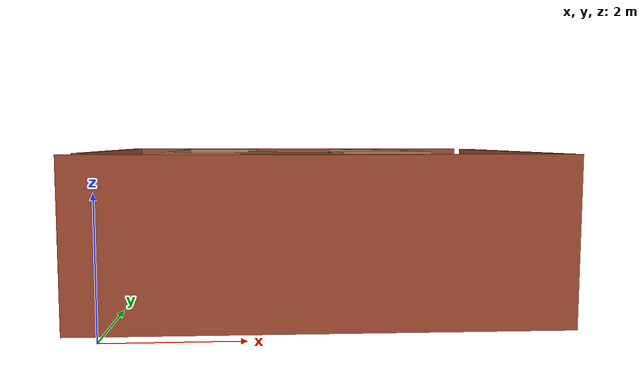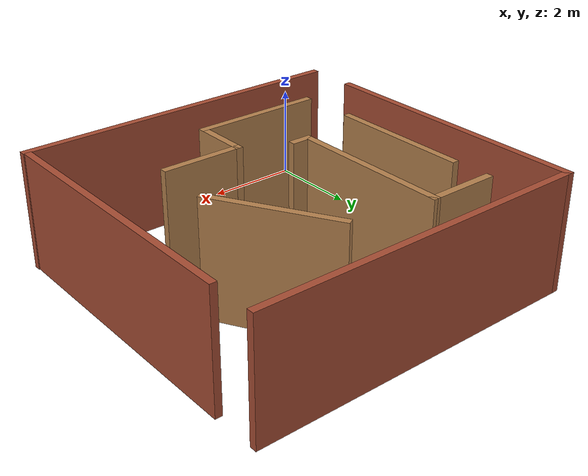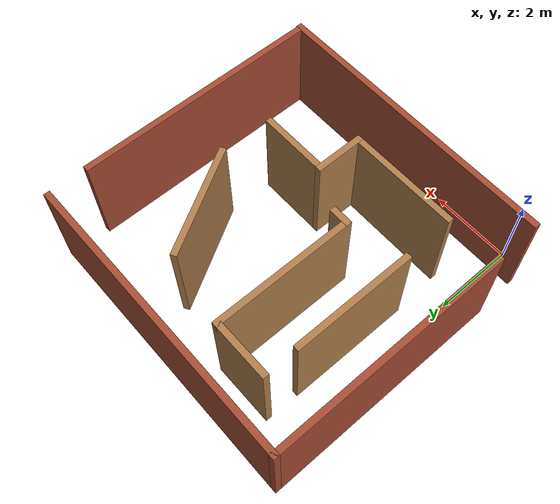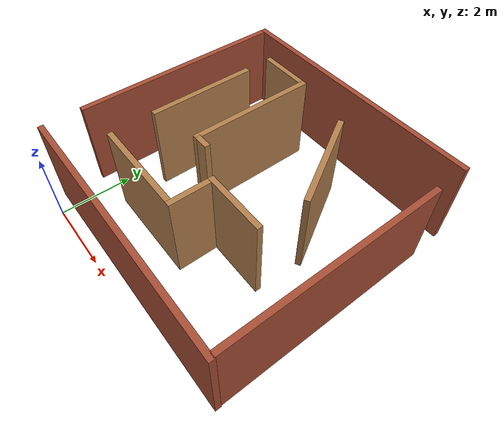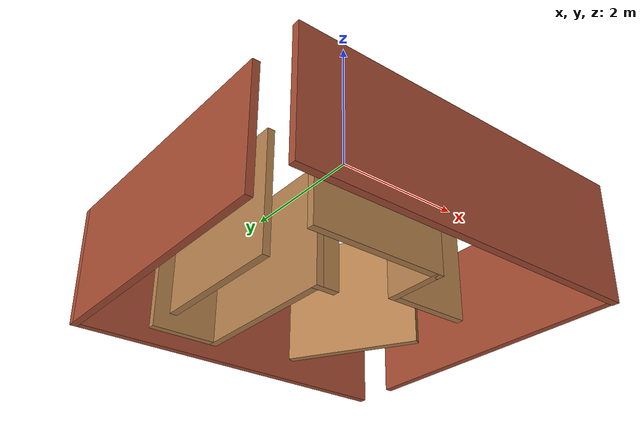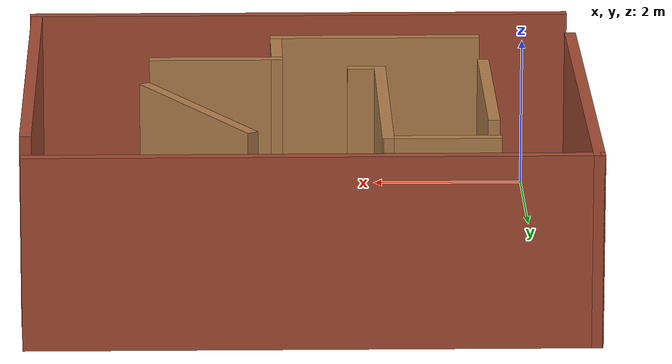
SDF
<?xml version='1.0'?>
<sdf version='1.7'>
  <model name='small_maze'>
    <pose>3.0209 3.73483 0 0 -0 0</pose>
    <link name='Wall_15'>
      <collision name='Wall_15_Collision'>
        <geometry>
          <box>
            <size>7.25 0.15 2.5</size>
          </box>
        </geometry>
        <pose>0 0 1.25 0 -0 0</pose>
      </collision>
      <visual name='Wall_15_Visual'>
        <pose>0 0 1.25 0 -0 0</pose>
        <geometry>
          <box>
            <size>7.25 0.15 2.5</size>
          </box>
        </geometry>
        <material>
          <script>
            <uri>file://media/materials/scripts/gazebo.material</uri>
            <name>Gazebo/Bricks</name>
          </script>
          <ambient>1 1 1 1</ambient>
        </material>
        <meta>
          <layer>0</layer>
        </meta>
      </visual>
      <pose>-0.0291 3.65983 0 0 -0 0</pose>
    </link>
    <link name='Wall_18'>
      <collision name='Wall_18_Collision'>
        <geometry>
          <box>
            <size>6 0.15 2.5</size>
          </box>
        </geometry>
        <pose>0 0 1.25 0 -0 0</pose>
      </collision>
      <visual name='Wall_18_Visual'>
        <pose>0 0 1.25 0 -0 0</pose>
        <geometry>
          <box>
            <size>6 0.15 2.5</size>
          </box>
        </geometry>
        <material>
          <script>
            <uri>file://media/materials/scripts/gazebo.material</uri>
            <name>Gazebo/Bricks</name>
          </script>
          <ambient>1 1 1 1</ambient>
        </material>
        <meta>
          <layer>0</layer>
        </meta>
      </visual>
      <pose>3.56005 -0.274798 0 0 -0 -1.5708</pose>
    </link>
    <link name='Wall_33'>
      <collision name='Wall_33_Collision'>
        <geometry>
          <box>
            <size>2.78498 0.15 2.5</size>
          </box>
        </geometry>
        <pose>0 0 1.25 0 -0 0</pose>
      </collision>
      <visual name='Wall_33_Visual'>
        <pose>0 0 1.25 0 -0 0</pose>
        <geometry>
          <box>
            <size>2.78498 0.15 2.5</size>
          </box>
        </geometry>
        <material>
          <script>
            <uri>file://media/materials/scripts/gazebo.material</uri>
            <name>Gazebo/Wood</name>
          </script>
          <ambient>1 1 1 1</ambient>
        </material>
        <meta>
          <layer>0</layer>
        </meta>
      </visual>
      <pose>-0.964139 -2.1071 0 0 -0 0</pose>
    </link>
    <link name='Wall_37'>
      <collision name='Wall_37_Collision'>
        <geometry>
          <box>
            <size>1.25 0.15 2.5</size>
          </box>
        </geometry>
        <pose>0 0 1.25 0 -0 0</pose>
      </collision>
      <visual name='Wall_37_Visual'>
        <pose>0 0 1.25 0 -0 0</pose>
        <geometry>
          <box>
            <size>1.25 0.15 2.5</size>
          </box>
        </geometry>
        <material>
          <script>
            <uri>file://media/materials/scripts/gazebo.material</uri>
            <name>Gazebo/Wood</name>
          </script>
          <ambient>1 1 1 1</ambient>
        </material>
        <meta>
          <layer>0</layer>
        </meta>
      </visual>
      <pose>0.353351 -1.55709 0 0 -0 1.5708</pose>
    </link>
    <link name='Wall_38'>
      <collision name='Wall_38_Collision'>
        <geometry>
          <box>
            <size>1.75 0.15 2.5</size>
          </box>
        </geometry>
        <pose>0 0 1.25 0 -0 0</pose>
      </collision>
      <visual name='Wall_38_Visual'>
        <pose>0 0 1.25 0 -0 0</pose>
        <geometry>
          <box>
            <size>1.75 0.15 2.5</size>
          </box>
        </geometry>
        <material>
          <script>
            <uri>file://media/materials/scripts/gazebo.material</uri>
            <name>Gazebo/Wood</name>
          </script>
          <ambient>1 1 1 1</ambient>
        </material>
        <meta>
          <layer>0</layer>
        </meta>
      </visual>
      <pose>1.15335 -1.0071 0 0 -0 0</pose>
    </link>
    <link name='Wall_42'>
      <collision name='Wall_42_Collision'>
        <geometry>
          <box>
            <size>1.5 0.15 2.5</size>
          </box>
        </geometry>
        <pose>0 0 1.25 0 -0 0</pose>
      </collision>
      <visual name='Wall_42_Visual'>
        <pose>0 0 1.25 0 -0 0</pose>
        <geometry>
          <box>
            <size>1.5 0.15 2.5</size>
          </box>
        </geometry>
        <material>
          <script>
            <uri>file://media/materials/scripts/gazebo.material</uri>
            <name>Gazebo/Wood</name>
          </script>
          <ambient>1 1 1 1</ambient>
        </material>
        <meta>
          <layer>0</layer>
        </meta>
      </visual>
      <pose>-1.6591 2.84259 0 0 -0 0</pose>
    </link>
    <link name='Wall_46'>
      <collision name='Wall_46_Collision'>
        <geometry>
          <box>
            <size>3 0.15 2.5</size>
          </box>
        </geometry>
        <pose>0 0 1.25 0 -0 0</pose>
      </collision>
      <visual name='Wall_46_Visual'>
        <pose>0 0 1.25 0 -0 0</pose>
        <geometry>
          <box>
            <size>3 0.15 2.5</size>
          </box>
        </geometry>
        <material>
          <script>
            <uri>file://media/materials/scripts/gazebo.material</uri>
            <name>Gazebo/Wood</name>
          </script>
          <ambient>1 1 1 1</ambient>
        </material>
        <meta>
          <layer>0</layer>
        </meta>
      </visual>
      <pose>-2.35159 0.57807 0 0 -0 -1.5708</pose>
    </link>
    <link name='Wall_48'>
      <collision name='Wall_48_Collision'>
        <geometry>
          <box>
            <size>3.5 0.15 2.5</size>
          </box>
        </geometry>
        <pose>0 0 1.25 0 -0 0</pose>
      </collision>
      <visual name='Wall_48_Visual'>
        <pose>0 0 1.25 0 -0 0</pose>
        <geometry>
          <box>
            <size>3.5 0.15 2.5</size>
          </box>
        </geometry>
        <material>
          <script>
            <uri>file://media/materials/scripts/gazebo.material</uri>
            <name>Gazebo/Wood</name>
          </script>
          <ambient>1 1 1 1</ambient>
        </material>
        <meta>
          <layer>0</layer>
        </meta>
      </visual>
      <pose>-0.984099 1.16759 0 0 -0 -1.5708</pose>
    </link>
    <link name='Wall_49'>
      <collision name='Wall_49_Collision'>
        <geometry>
          <box>
            <size>0.5 0.15 2.5</size>
          </box>
        </geometry>
        <pose>0 0 1.25 0 -0 0</pose>
      </collision>
      <visual name='Wall_49_Visual'>
        <pose>0 0 1.25 0 -0 0</pose>
        <geometry>
          <box>
            <size>0.5 0.15 2.5</size>
          </box>
        </geometry>
        <material>
          <script>
            <uri>file://media/materials/scripts/gazebo.material</uri>
            <name>Gazebo/Wood</name>
          </script>
          <ambient>1 1 1 1</ambient>
        </material>
        <meta>
          <layer>0</layer>
        </meta>
      </visual>
      <pose>-0.809099 -0.507407 0 0 -0 0</pose>
    </link>
    <link name='Wall_51'>
      <collision name='Wall_51_Collision'>
        <geometry>
          <box>
            <size>2.75 0.15 2.5</size>
          </box>
        </geometry>
        <pose>0 0 1.25 0 -0 0</pose>
      </collision>
      <visual name='Wall_51_Visual'>
        <pose>0 0 1.25 0 -0 0</pose>
        <geometry>
          <box>
            <size>2.75 0.15 2.5</size>
          </box>
        </geometry>
        <material>
          <script>
            <uri>file://media/materials/scripts/gazebo.material</uri>
            <name>Gazebo/Wood</name>
          </script>
          <ambient>1 1 1 1</ambient>
        </material>
        <meta>
          <layer>0</layer>
        </meta>
      </visual>
      <pose>1.39415 1.40194 0 0 -0 -1.0472</pose>
    </link>
    <link name='Wall_6'>
      <collision name='Wall_6_Collision'>
        <geometry>
          <box>
            <size>7.25 0.15 2.5</size>
          </box>
        </geometry>
        <pose>0 0 1.25 0 -0 0</pose>
      </collision>
      <visual name='Wall_6_Visual'>
        <pose>0 0 1.25 0 -0 0</pose>
        <geometry>
          <box>
            <size>7.25 0.15 2.5</size>
          </box>
        </geometry>
        <material>
          <script>
            <uri>file://media/materials/scripts/gazebo.material</uri>
            <name>Gazebo/Bricks</name>
          </script>
          <ambient>1 1 1 1</ambient>
        </material>
        <meta>
          <layer>0</layer>
        </meta>
      </visual>
      <pose>0.0291 -3.32483 0 0 -0 0</pose>
    </link>
    <link name='Wall_9'>
      <collision name='Wall_9_Collision'>
        <geometry>
          <box>
            <size>6 0.15 2.5</size>
          </box>
        </geometry>
        <pose>0 0 1.25 0 -0 0</pose>
      </collision>
      <visual name='Wall_9_Visual'>
        <pose>0 0 1.25 0 -0 0</pose>
        <geometry>
          <box>
            <size>6 0.15 2.5</size>
          </box>
        </geometry>
        <material>
          <script>
            <uri>file://media/materials/scripts/gazebo.material</uri>
            <name>Gazebo/Bricks</name>
          </script>
          <ambient>1 1 1 1</ambient>
        </material>
        <meta>
          <layer>0</layer>
        </meta>
      </visual>
      <pose>-3.5791 0.734832 0 0 -0 -1.5708</pose>
    </link>
    <static>1</static>
  </model>
</sdf>
